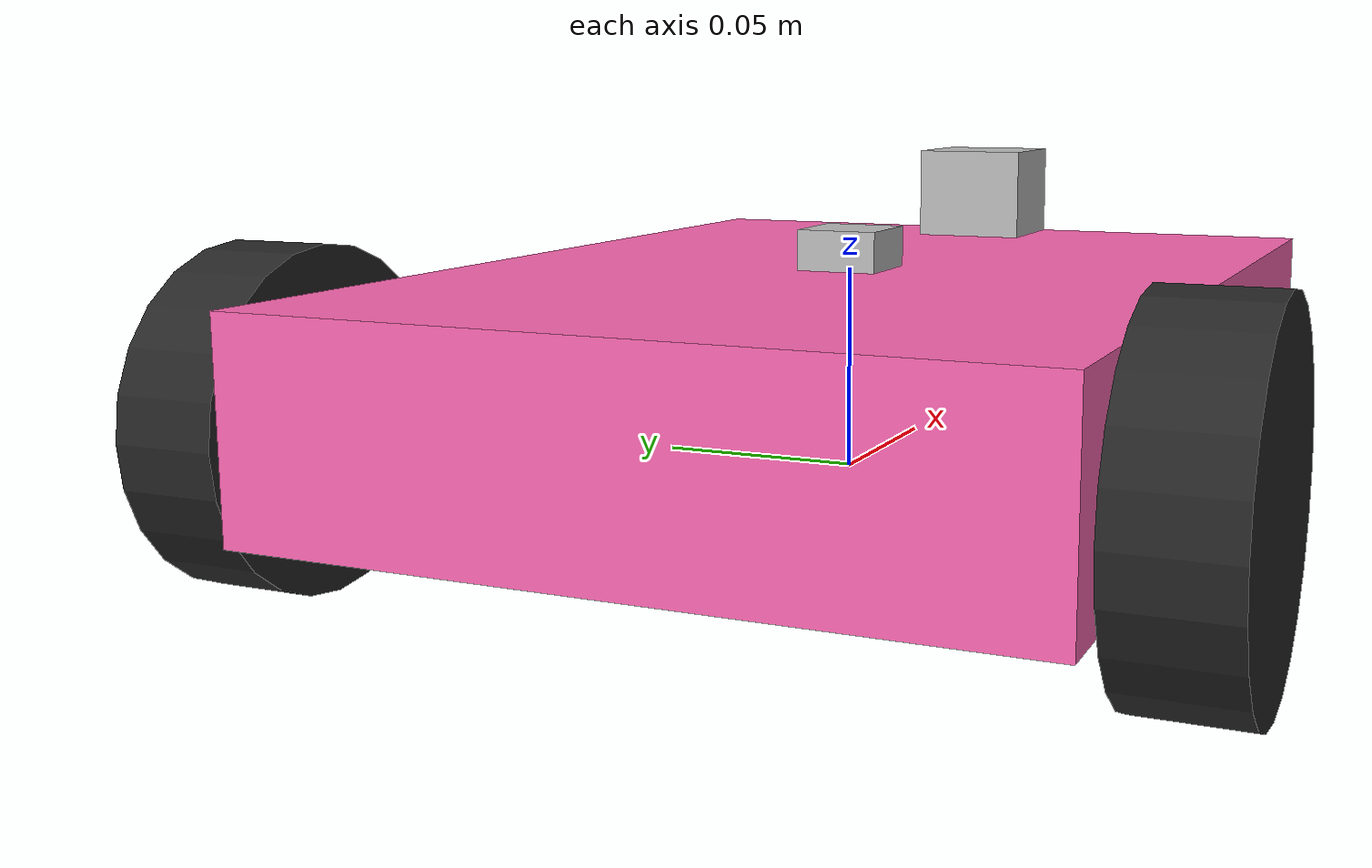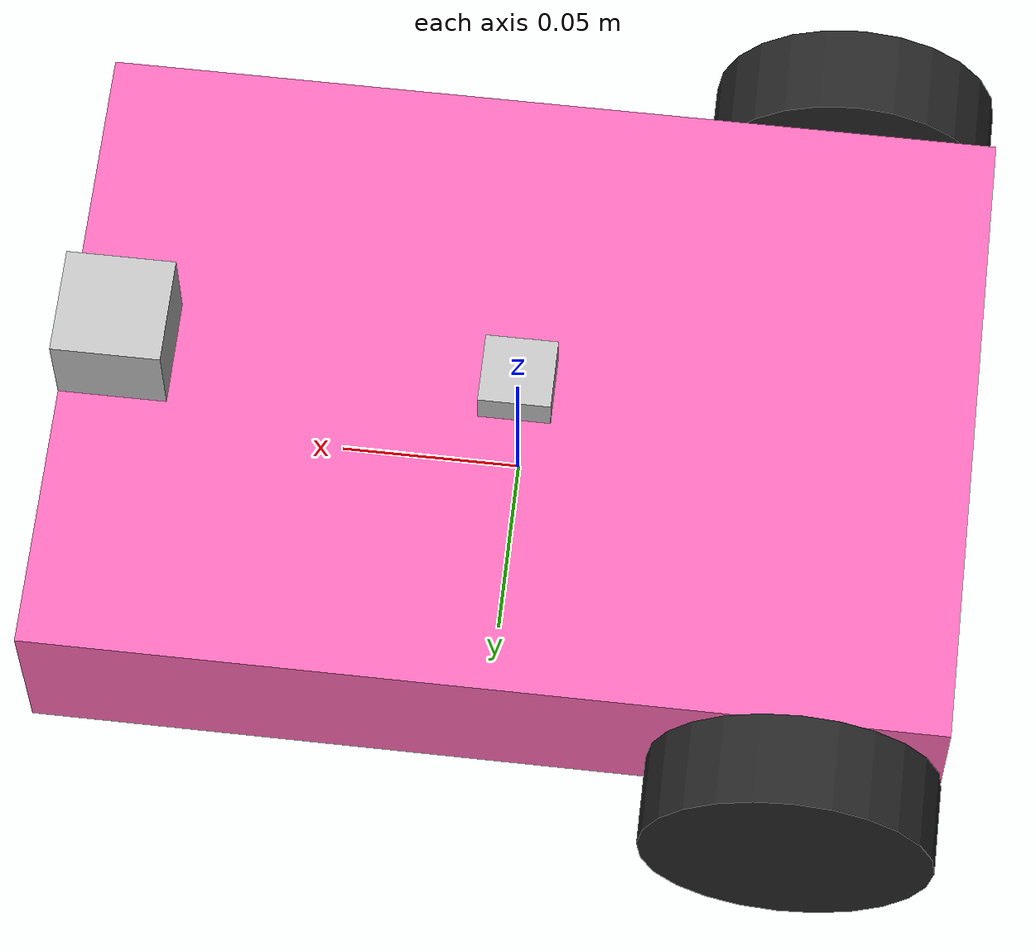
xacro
<?xml version="1.0"?>
<robot xmlns:xacro="http://www.ros.org/wiki/xacro" name="line_follower">

<xacro:property
    name="controllers_file"
    value="$(find line_follower_bot)/config/controllers.yaml"/>
  <!-- ================= Materials ================= -->

  <material name="pink">
    <color rgba="1.0 0.41 0.71 1"/>
  </material>

  <material name="black">
    <color rgba="0.15 0.15 0.15 1"/>
  </material>

  <material name="grey">
    <color rgba="0.75 0.75 0.75 1"/>
  </material>

  <!-- ================= Base Link ================= -->

  <link name="base_link">

    <visual>
      <origin xyz="0 0 0.025"/>
      <geometry>
        <box size="0.25 0.18 0.05"/>
      </geometry>
      <material name="pink"/>
    </visual>

    <collision>
      <origin xyz="0 0 0.025"/>
      <geometry>
        <box size="0.25 0.18 0.05"/>
      </geometry>
    </collision>

    <inertial>
      <origin xyz="0 0 0.025"/>
      <mass value="2.0"/>
      <inertia
        ixx="0.010"
        ixy="0"
        ixz="0"
        iyy="0.013"
        iyz="0"
        izz="0.020"/>
    </inertial>

  </link>

  <!-- ================= LEFT WHEEL ================= -->

<link name="left_wheel">

  <visual>
    <origin xyz="0 0 0" rpy="1.5708 0 0"/>
    <geometry>
      <cylinder radius="0.04" length="0.025"/>
    </geometry>
    <material name="black"/>
  </visual>

  <collision>
    <origin xyz="0 0 0" rpy="1.5708 0 0"/>
    <geometry>
      <cylinder radius="0.04" length="0.025"/>
    </geometry>
  </collision>

  <inertial>
    <origin xyz="0 0 0"/>
    <mass value="0.15"/>
    <inertia
      ixx="8.0e-5"
      ixy="0"
      ixz="0"
      iyy="8.0e-5"
      iyz="0"
      izz="1.6e-4"/>
  </inertial>

</link>

<joint name="left_wheel_joint" type="continuous">
  <parent link="base_link"/>
  <child link="left_wheel"/>
  <!-- Rear Left -->
  <origin xyz="-0.085 0.105 0.02"/>
  <axis xyz="0 1 0"/>
</joint>
  <!-- ================= RIGHT WHEEL ================= -->

<link name="right_wheel">

  <visual>
    <origin xyz="0 0 0" rpy="1.5708 0 0"/>
    <geometry>
      <cylinder radius="0.04" length="0.025"/>
    </geometry>
    <material name="black"/>
  </visual>

  <collision>
    <origin xyz="0 0 0" rpy="1.5708 0 0"/>
    <geometry>
      <cylinder radius="0.04" length="0.025"/>
    </geometry>
  </collision>

  <inertial>
    <origin xyz="0 0 0"/>
    <mass value="0.15"/>
    <inertia
      ixx="8.0e-5"
      ixy="0"
      ixz="0"
      iyy="8.0e-5"
      iyz="0"
      izz="1.6e-4"/>
  </inertial>

</link>

<joint name="right_wheel_joint" type="continuous">
  <parent link="base_link"/>
  <child link="right_wheel"/>
  <!-- Rear Right -->
  <origin xyz="-0.085 -0.105 0.02"/>
  <axis xyz="0 1 0"/>
</joint>

 <!-- ================= FRONT CASTER ================= -->

<link name="caster_wheel">

  <visual>
    <origin xyz="0 0 0"/>
    <geometry>
      <sphere radius="0.025"/>
    </geometry>
    <material name="grey"/>
  </visual>

  <collision>
    <origin xyz="0 0 0"/>
    <geometry>
      <sphere radius="0.025"/>
    </geometry>
  </collision>

  <inertial>
    <origin xyz="0 0 0"/>
    <mass value="0.05"/>
    <inertia
      ixx="1.25e-5"
      ixy="0"
      ixz="0"
      iyy="1.25e-5"
      iyz="0"
      izz="1.25e-5"/>
  </inertial>

</link>

<joint name="caster_joint" type="fixed">
  <parent link="base_link"/>
  <child link="caster_wheel"/>
  <!-- Front center -->
  <origin xyz="0.100 0 0.0"/>
</joint>

  <!-- ================= CAMERA ================= -->

  <link name="camera_link">

    <visual>
      <geometry>
        <box size="0.03 0.03 0.03"/>
      </geometry>
      <material name="grey"/>
    </visual>

    <collision>
      <geometry>
        <box size="0.03 0.03 0.03"/>
      </geometry>
    </collision>

    <inertial>
      <mass value="0.05"/>
      <inertia
        ixx="1e-5"
        ixy="0"
        ixz="0"
        iyy="1e-5"
        iyz="0"
        izz="1e-5"/>
    </inertial>

  </link>

  <joint name="camera_joint" type="fixed">
    <parent link="base_link"/>
    <child link="camera_link"/>
    <!-- Front top -->
    <origin xyz="0.11 0 0.06" rpy="0 0 0"/>
  </joint>

  <!-- ================= IMU ================= -->

  <link name="imu_link">

    <visual>
      <geometry>
        <box size="0.02 0.02 0.01"/>
      </geometry>
      <material name="grey"/>
    </visual>

    <collision>
      <geometry>
        <box size="0.02 0.02 0.01"/>
      </geometry>
    </collision>

    <inertial>
      <mass value="0.02"/>
      <inertia
        ixx="5e-6"
        ixy="0"
        ixz="0"
        iyy="5e-6"
        iyz="0"
        izz="5e-6"/>
    </inertial>

  </link>

  <joint name="imu_joint" type="fixed">
    <parent link="base_link"/>
    <child link="imu_link"/>
    <origin xyz="0 0 0.055"/>
  </joint>
  <!-- ROS2 Control Block ; defines the hardware -->
  <ros2_control name="GazeboSystem" type="system">

  <hardware>
    <plugin>ign_ros2_control/IgnitionSystem</plugin>
  </hardware>

  <joint name="left_wheel_joint">
    <command_interface name="velocity"/>
    <state_interface name="position"/>
    <state_interface name="velocity"/>
  </joint>

  <joint name="right_wheel_joint">
    <command_interface name="velocity"/>
    <state_interface name="position"/>
    <state_interface name="velocity"/>
  </joint>

</ros2_control>
<!-- ROS2 Control PLugin -->
<gazebo>
 <plugin filename="libign_ros2_control-system.so" name="ign_ros2_control::IgnitionROS2ControlPlugin">
    <parameters>${controllers_file}</parameters>
    <ros>
      <remapping>/diff_drive_controller/cmd_vel_unstamped:=/cmd_vel</remapping>
    </ros>
  </plugin>
</gazebo>

</robot>
